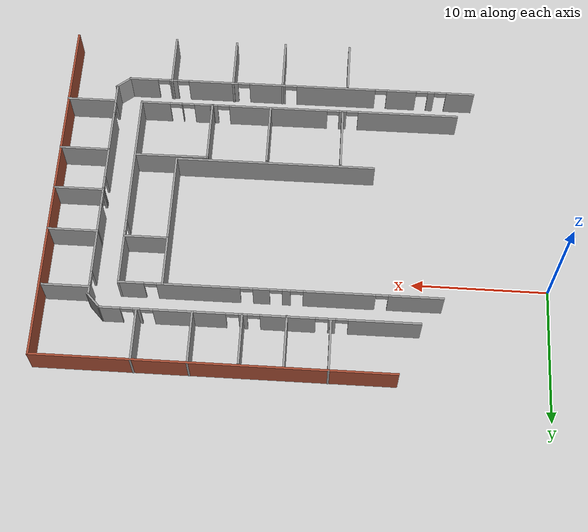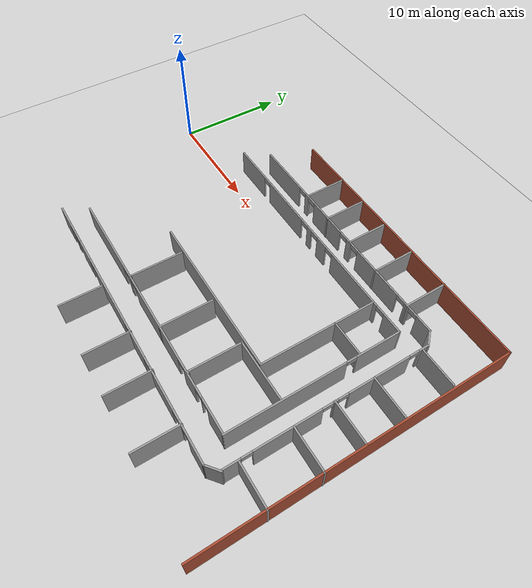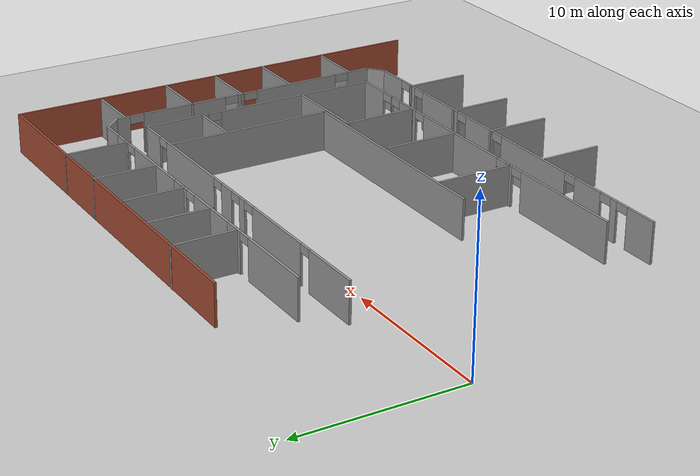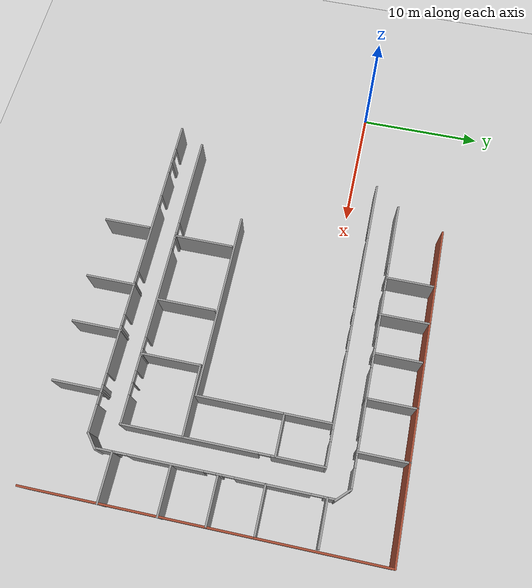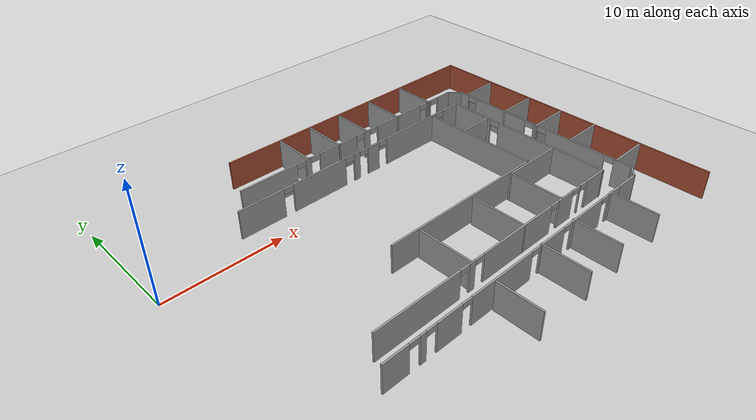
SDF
<sdf version="1.7">
 <world name="default">
  <model name="ground_plane">
   <static>1</static>
   <link name="link">
    <collision name="collision">
     <geometry><plane><normal>0 0 1</normal><size>100 100</size></plane></geometry>
     <surface>
      <contact><collide_bitmask>65535</collide_bitmask></contact>
      <friction><ode><mu>100</mu><mu2>50</mu2></ode></friction>
     </surface>
    </collision>
    <visual name="visual">
     <cast_shadows>0</cast_shadows>
     <geometry><plane><normal>0 0 1</normal><size>100 100</size></plane></geometry>
     <material>
      <script><uri>file://media/materials/scripts/gazebo.material</uri><name>Gazebo/Grey</name></script>
     </material>
    </visual>
   </link>
  </model>
  <model name="OEC_2F_B">
   <pose>0.733156 -0.285133 0 0 -0 0</pose>
   <link name="Wall_206">
    <collision name="Wall_206_Collision">
     <geometry><box><size>4 0.15 2.5</size></box></geometry>
     <pose>0 0 1.25 0 -0 0</pose>
    </collision>
    <visual name="Wall_206_Visual">
     <pose>0 0 1.25 0 -0 0</pose>
     <geometry><box><size>4 0.15 2.5</size></box></geometry>
     <material>
      <script><uri>file://media/materials/scripts/gazebo.material</uri><name>Gazebo/Grey</name></script>
      <ambient>1 1 1 1</ambient>
     </material>
     <meta><layer>0</layer></meta>
    </visual>
    <pose>15.0544 6.25314 0 0 -0 -1.5708</pose>
   </link>
   <link name="Wall_208">
    <collision name="Wall_208_Collision">
     <geometry><box><size>4 0.15 2.5</size></box></geometry>
     <pose>0 0 1.25 0 -0 0</pose>
    </collision>
    <visual name="Wall_208_Visual">
     <pose>0 0 1.25 0 -0 0</pose>
     <geometry><box><size>4 0.15 2.5</size></box></geometry>
     <material>
      <script><uri>file://media/materials/scripts/gazebo.material</uri><name>Gazebo/Grey</name></script>
      <ambient>1 1 1 1</ambient>
     </material>
     <meta><layer>0</layer></meta>
    </visual>
    <pose>18.1853 6.18278 0 0 -0 -1.5708</pose>
   </link>
   <link name="Wall_210">
    <collision name="Wall_210_Collision">
     <geometry><box><size>3.75 0.15 2.5</size></box></geometry>
     <pose>0 0 1.25 0 -0 0</pose>
    </collision>
    <visual name="Wall_210_Visual">
     <pose>0 0 1.25 0 -0 0</pose>
     <geometry><box><size>3.75 0.15 2.5</size></box></geometry>
     <material>
      <script><uri>file://media/materials/scripts/gazebo.material</uri><name>Gazebo/Grey</name></script>
      <ambient>1 1 1 1</ambient>
     </material>
     <meta><layer>0</layer></meta>
    </visual>
    <pose>21.3514 6.16707 0 0 -0 -1.5708</pose>
   </link>
   <link name="Wall_212">
    <collision name="Wall_212_Collision">
     <geometry><box><size>4 0.15 2.5</size></box></geometry>
     <pose>0 0 1.25 0 -0 0</pose>
    </collision>
    <visual name="Wall_212_Visual">
     <pose>0 0 1.25 0 -0 0</pose>
     <geometry><box><size>4 0.15 2.5</size></box></geometry>
     <material>
      <script><uri>file://media/materials/scripts/gazebo.material</uri><name>Gazebo/Grey</name></script>
      <ambient>1 1 1 1</ambient>
     </material>
     <meta><layer>0</layer></meta>
    </visual>
    <pose>24.9044 6.21796 0 0 -0 -1.5708</pose>
   </link>
   <link name="Wall_214">
    <collision name="Wall_214_Collision">
     <geometry><box><size>4 0.15 2.5</size></box></geometry>
     <pose>0 0 1.25 0 -0 0</pose>
    </collision>
    <visual name="Wall_214_Visual">
     <pose>0 0 1.25 0 -0 0</pose>
     <geometry><box><size>4 0.15 2.5</size></box></geometry>
     <material>
      <script><uri>file://media/materials/scripts/gazebo.material</uri><name>Gazebo/Grey</name></script>
      <ambient>1 1 1 1</ambient>
     </material>
     <meta><layer>0</layer></meta>
    </visual>
    <pose>28.8796 6.21796 0 0 -0 -1.5708</pose>
   </link>
   <link name="Wall_219">
    <collision name="Wall_219_Collision">
     <geometry><box><size>15 0.15 2.5</size></box></geometry>
     <pose>0 0 1.25 0 -0 0</pose>
    </collision>
    <visual name="Wall_219_Visual">
     <pose>0 0 1.25 0 -0 0</pose>
     <geometry><box><size>15 0.15 2.5</size></box></geometry>
     <material>
      <script><uri>file://media/materials/scripts/gazebo.material</uri><name>Gazebo/Grey</name></script>
      <ambient>1 1 1 1</ambient>
     </material>
     <meta><layer>0</layer></meta>
    </visual>
    <pose>19.8156 -8.09521 0 0 -0 0</pose>
   </link>
   <link name="Wall_220">
    <collision name="Wall_220_Collision">
     <geometry><box><size>10.5 0.15 2.5</size></box></geometry>
     <pose>0 0 1.25 0 -0 0</pose>
    </collision>
    <visual name="Wall_220_Visual">
     <pose>0 0 1.25 0 -0 0</pose>
     <geometry><box><size>10.5 0.15 2.5</size></box></geometry>
     <material>
      <script><uri>file://media/materials/scripts/gazebo.material</uri><name>Gazebo/Grey</name></script>
      <ambient>1 1 1 1</ambient>
     </material>
     <meta><layer>0</layer></meta>
    </visual>
    <pose>27.2406 -2.92021 0 0 -0 1.5708</pose>
   </link>
   <link name="Wall_222">
    <collision name="Wall_222_Collision">
     <geometry><box><size>3.25 0.15 2.5</size></box></geometry>
     <pose>0 0 1.25 0 -0 0</pose>
    </collision>
    <visual name="Wall_222_Visual">
     <pose>0 0 1.25 0 -0 0</pose>
     <geometry><box><size>3.25 0.15 2.5</size></box></geometry>
     <material>
      <script><uri>file://media/materials/scripts/gazebo.material</uri><name>Gazebo/Grey</name></script>
      <ambient>1 1 1 1</ambient>
     </material>
     <meta><layer>0</layer></meta>
    </visual>
    <pose>28.8075 -1.41603 0 0 -0 0</pose>
   </link>
   <link name="Wall_224">
    <collision name="Wall_224_Collision">
     <geometry><box><size>5.62083 0.15 2.5</size></box></geometry>
     <pose>0 0 1.25 0 -0 0</pose>
    </collision>
    <visual name="Wall_224_Visual">
     <pose>0 0 1.25 0 -0 0</pose>
     <geometry><box><size>5.62083 0.15 2.5</size></box></geometry>
     <material>
      <script><uri>file://media/materials/scripts/gazebo.material</uri><name>Gazebo/Grey</name></script>
      <ambient>1 1 1 1</ambient>
     </material>
     <meta><layer>0</layer></meta>
    </visual>
    <pose>27.6729 -8.31895 0 0 -0 -3.13424</pose>
   </link>
   <link name="Wall_230">
    <collision name="Wall_230_Collision">
     <geometry><box><size>3.5 0.15 2.5</size></box></geometry>
     <pose>0 0 1.25 0 -0 0</pose>
    </collision>
    <visual name="Wall_230_Visual">
     <pose>0 0 1.25 0 -0 0</pose>
     <geometry><box><size>3.5 0.15 2.5</size></box></geometry>
     <material>
      <script><uri>file://media/materials/scripts/gazebo.material</uri><name>Gazebo/Grey</name></script>
      <ambient>1 1 1 1</ambient>
     </material>
     <meta><layer>0</layer></meta>
    </visual>
    <pose>34.1634 2.77483 0 0 -0 0</pose>
   </link>
   <link name="Wall_232">
    <collision name="Wall_232_Collision">
     <geometry><box><size>3.75 0.15 2.5</size></box></geometry>
     <pose>0 0 1.25 0 -0 0</pose>
    </collision>
    <visual name="Wall_232_Visual">
     <pose>0 0 1.25 0 -0 0</pose>
     <geometry><box><size>3.75 0.15 2.5</size></box></geometry>
     <material>
      <script><uri>file://media/materials/scripts/gazebo.material</uri><name>Gazebo/Grey</name></script>
      <ambient>1 1 1 1</ambient>
     </material>
     <meta><layer>0</layer></meta>
    </visual>
    <pose>34.2272 -1.69135 0 0 -0 0</pose>
   </link>
   <link name="Wall_234">
    <collision name="Wall_234_Collision">
     <geometry><box><size>3.75 0.15 2.5</size></box></geometry>
     <pose>0 0 1.25 0 -0 0</pose>
    </collision>
    <visual name="Wall_234_Visual">
     <pose>0 0 1.25 0 -0 0</pose>
     <geometry><box><size>3.75 0.15 2.5</size></box></geometry>
     <material>
      <script><uri>file://media/materials/scripts/gazebo.material</uri><name>Gazebo/Grey</name></script>
      <ambient>1 1 1 1</ambient>
     </material>
     <meta><layer>0</layer></meta>
    </visual>
    <pose>34.2272 -5.14804 0 0 -0 0</pose>
   </link>
   <link name="Wall_238">
    <collision name="Wall_238_Collision">
     <geometry><box><size>3.75 0.15 2.5</size></box></geometry>
     <pose>0 0 1.25 0 -0 0</pose>
    </collision>
    <visual name="Wall_238_Visual">
     <pose>0 0 1.25 0 -0 0</pose>
     <geometry><box><size>3.75 0.15 2.5</size></box></geometry>
     <material>
      <script><uri>file://media/materials/scripts/gazebo.material</uri><name>Gazebo/Grey</name></script>
      <ambient>1 1 1 1</ambient>
     </material>
     <meta><layer>0</layer></meta>
    </visual>
    <pose>34.2981 -12.9791 0 0 -0 3.14159</pose>
   </link>
   <link name="Wall_240">
    <collision name="Wall_240_Collision">
     <geometry><box><size>3.75 0.15 2.5</size></box></geometry>
     <pose>0 0 1.25 0 -0 0</pose>
    </collision>
    <visual name="Wall_240_Visual">
     <pose>0 0 1.25 0 -0 0</pose>
     <geometry><box><size>3.75 0.15 2.5</size></box></geometry>
     <material>
      <script><uri>file://media/materials/scripts/gazebo.material</uri><name>Gazebo/Grey</name></script>
      <ambient>1 1 1 1</ambient>
     </material>
     <meta><layer>0</layer></meta>
    </visual>
    <pose>34.2981 -8.60474 0 0 -0 3.14159</pose>
   </link>
   <link name="Wall_242">
    <collision name="Wall_242_Collision">
     <geometry><box><size>4.75 0.15 2.5</size></box></geometry>
     <pose>0 0 1.25 0 -0 0</pose>
    </collision>
    <visual name="Wall_242_Visual">
     <pose>0 0 1.25 0 -0 0</pose>
     <geometry><box><size>4.75 0.15 2.5</size></box></geometry>
     <material>
      <script><uri>file://media/materials/scripts/gazebo.material</uri><name>Gazebo/Grey</name></script>
      <ambient>1 1 1 1</ambient>
     </material>
     <meta><layer>0</layer></meta>
    </visual>
    <pose>14.899 -10.6294 0 0 -0 -1.5708</pose>
   </link>
   <link name="Wall_243">
    <collision name="Wall_243_Collision">
     <geometry><box><size>0.16 0.15 2.5</size></box></geometry>
     <pose>0 0 1.25 0 -0 0</pose>
    </collision>
    <visual name="Wall_243_Visual">
     <pose>0 0 1.25 0 -0 0</pose>
     <geometry><box><size>0.16 0.15 2.5</size></box></geometry>
     <material>
      <script><uri>file://media/materials/scripts/gazebo.material</uri><name>Gazebo/Grey</name></script>
      <ambient>0 0 0 1</ambient>
     </material>
     <meta><layer>0</layer></meta>
    </visual>
    <pose>14.904 -12.9294 0 0 -0 0</pose>
   </link>
   <link name="Wall_244">
    <collision name="Wall_244_Collision">
     <geometry><box><size>4.75 0.15 2.5</size></box></geometry>
     <pose>0 0 1.25 0 -0 0</pose>
    </collision>
    <visual name="Wall_244_Visual">
     <pose>0 0 1.25 0 -0 0</pose>
     <geometry><box><size>4.75 0.15 2.5</size></box></geometry>
     <material>
      <script><uri>file://media/materials/scripts/gazebo.material</uri><name>Gazebo/Grey</name></script>
      <ambient>1 1 1 1</ambient>
     </material>
     <meta><layer>0</layer></meta>
    </visual>
    <pose>20.4664 -10.6906 0 0 -0 -1.5708</pose>
   </link>
   <link name="Wall_246">
    <collision name="Wall_246_Collision">
     <geometry><box><size>4.75 0.15 2.5</size></box></geometry>
     <pose>0 0 1.25 0 -0 0</pose>
    </collision>
    <visual name="Wall_246_Visual">
     <pose>0 0 1.25 0 -0 0</pose>
     <geometry><box><size>4.75 0.15 2.5</size></box></geometry>
     <material>
      <script><uri>file://media/materials/scripts/gazebo.material</uri><name>Gazebo/Grey</name></script>
      <ambient>1 1 1 1</ambient>
     </material>
     <meta><layer>0</layer></meta>
    </visual>
    <pose>24.9577 -10.6189 0 0 -0 -1.5708</pose>
   </link>
   <link name="Wall_247">
    <collision name="Wall_247_Collision">
     <geometry><box><size>0.286733 0.15 2.5</size></box></geometry>
     <pose>0 0 1.25 0 -0 0</pose>
    </collision>
    <visual name="Wall_247_Visual">
     <pose>0 0 1.25 0 -0 0</pose>
     <geometry><box><size>0.286733 0.15 2.5</size></box></geometry>
     <material>
      <script><uri>file://media/materials/scripts/gazebo.material</uri><name>Gazebo/Grey</name></script>
      <ambient>0 0 0 1</ambient>
     </material>
     <meta><layer>0</layer></meta>
    </visual>
    <pose>25.0029 -12.9189 0 0 -0 0.298621</pose>
   </link>
   <link name="Wall_248">
    <collision name="Wall_248_Collision">
     <geometry><box><size>4 0.15 2.5</size></box></geometry>
     <pose>0 0 1.25 0 -0 0</pose>
    </collision>
    <visual name="Wall_248_Visual">
     <pose>0 0 1.25 0 -0 0</pose>
     <geometry><box><size>4 0.15 2.5</size></box></geometry>
     <material>
      <script><uri>file://media/materials/scripts/gazebo.material</uri><name>Gazebo/Grey</name></script>
      <ambient>1 1 1 1</ambient>
     </material>
     <meta><layer>0</layer></meta>
    </visual>
    <pose>28.2804 -16.9631 0 0 -0 1.5708</pose>
   </link>
   <link name="Wall_256">
    <collision name="Wall_256_Collision">
     <geometry><box><size>3.75 0.15 2.5</size></box></geometry>
     <pose>0 0 1.25 0 -0 0</pose>
    </collision>
    <visual name="Wall_256_Visual">
     <pose>0 0 1.25 0 -0 0</pose>
     <geometry><box><size>3.75 0.15 2.5</size></box></geometry>
     <material>
      <script><uri>file://media/materials/scripts/gazebo.material</uri><name>Gazebo/Grey</name></script>
      <ambient>1 1 1 1</ambient>
     </material>
     <meta><layer>0</layer></meta>
    </visual>
    <pose>14.6064 -17.0881 0 0 -0 1.5708</pose>
   </link>
   <link name="Wall_258">
    <collision name="Wall_258_Collision">
     <geometry><box><size>4 0.15 2.5</size></box></geometry>
     <pose>0 0 1.25 0 -0 0</pose>
    </collision>
    <visual name="Wall_258_Visual">
     <pose>0 0 1.25 0 -0 0</pose>
     <geometry><box><size>4 0.15 2.5</size></box></geometry>
     <material>
      <script><uri>file://media/materials/scripts/gazebo.material</uri><name>Gazebo/Grey</name></script>
      <ambient>1 1 1 1</ambient>
     </material>
     <meta><layer>0</layer></meta>
    </visual>
    <pose>19.6633 -16.9631 0 0 -0 1.5708</pose>
   </link>
   <link name="Wall_260">
    <collision name="Wall_260_Collision">
     <geometry><box><size>4 0.15 2.5</size></box></geometry>
     <pose>0 0 1.25 0 -0 0</pose>
    </collision>
    <visual name="Wall_260_Visual">
     <pose>0 0 1.25 0 -0 0</pose>
     <geometry><box><size>4 0.15 2.5</size></box></geometry>
     <material>
      <script><uri>file://media/materials/scripts/gazebo.material</uri><name>Gazebo/Grey</name></script>
      <ambient>1 1 1 1</ambient>
     </material>
     <meta><layer>0</layer></meta>
    </visual>
    <pose>23.5066 -16.9227 0 0 -0 1.5708</pose>
   </link>
   <link name="Wall_57">
    <pose>20.1178 4.31124 0 0 -0 0</pose>
    <visual name="Wall_57_Visual_0">
     <pose>-8.89371 0 1.25 0 -0 0</pose>
     <geometry><box><size>5.21259 0.15 2.5</size></box></geometry>
     <material>
      <script><uri>file://media/materials/scripts/gazebo.material</uri><name>Gazebo/Grey</name></script>
      <ambient>1 1 1 1</ambient>
     </material>
     <meta><layer>0</layer></meta>
    </visual>
    <collision name="Wall_57_Collision_0">
     <geometry><box><size>5.21259 0.15 2.5</size></box></geometry>
     <pose>-8.89371 0 1.25 0 -0 0</pose>
    </collision>
    <visual name="Wall_57_Visual_1">
     <pose>-5.12565 0 1.25 0 -0 0</pose>
     <geometry><box><size>0.523511 0.15 2.5</size></box></geometry>
     <material>
      <script><uri>file://media/materials/scripts/gazebo.material</uri><name>Gazebo/Grey</name></script>
      <ambient>1 1 1 1</ambient>
     </material>
     <meta><layer>0</layer></meta>
    </visual>
    <collision name="Wall_57_Collision_1">
     <geometry><box><size>0.523511 0.15 2.5</size></box></geometry>
     <pose>-5.12565 0 1.25 0 -0 0</pose>
    </collision>
    <visual name="Wall_57_Visual_2">
     <pose>-1.99571 0 1.25 0 -0 0</pose>
     <geometry><box><size>3.93638 0.15 2.5</size></box></geometry>
     <material>
      <script><uri>file://media/materials/scripts/gazebo.material</uri><name>Gazebo/Grey</name></script>
      <ambient>1 1 1 1</ambient>
     </material>
     <meta><layer>0</layer></meta>
    </visual>
    <collision name="Wall_57_Collision_2">
     <geometry><box><size>3.93638 0.15 2.5</size></box></geometry>
     <pose>-1.99571 0 1.25 0 -0 0</pose>
    </collision>
    <visual name="Wall_57_Visual_3">
     <pose>1.18292 0 1.25 0 -0 0</pose>
     <geometry><box><size>0.620874 0.15 2.5</size></box></geometry>
     <material>
      <script><uri>file://media/materials/scripts/gazebo.material</uri><name>Gazebo/Grey</name></script>
      <ambient>1 1 1 1</ambient>
     </material>
     <meta><layer>0</layer></meta>
    </visual>
    <collision name="Wall_57_Collision_3">
     <geometry><box><size>0.620874 0.15 2.5</size></box></geometry>
     <pose>1.18292 0 1.25 0 -0 0</pose>
    </collision>
    <visual name="Wall_57_Visual_4">
     <pose>4.99271 0 1.25 0 -0 0</pose>
     <geometry><box><size>5.19871 0.15 2.5</size></box></geometry>
     <material>
      <script><uri>file://media/materials/scripts/gazebo.material</uri><name>Gazebo/Grey</name></script>
      <ambient>1 1 1 1</ambient>
     </material>
     <meta><layer>0</layer></meta>
    </visual>
    <collision name="Wall_57_Collision_4">
     <geometry><box><size>5.19871 0.15 2.5</size></box></geometry>
     <pose>4.99271 0 1.25 0 -0 0</pose>
    </collision>
    <visual name="Wall_57_Visual_5">
     <pose>8.75688 0 1.25 0 -0 0</pose>
     <geometry><box><size>0.529623 0.15 2.5</size></box></geometry>
     <material>
      <script><uri>file://media/materials/scripts/gazebo.material</uri><name>Gazebo/Grey</name></script>
      <ambient>1 1 1 1</ambient>
     </material>
     <meta><layer>0</layer></meta>
    </visual>
    <collision name="Wall_57_Collision_5">
     <geometry><box><size>0.529623 0.15 2.5</size></box></geometry>
     <pose>8.75688 0 1.25 0 -0 0</pose>
    </collision>
    <visual name="Wall_57_Visual_6">
     <pose>10.7108 0 1.25 0 -0 0</pose>
     <geometry><box><size>1.57831 0.15 2.5</size></box></geometry>
     <material>
      <script><uri>file://media/materials/scripts/gazebo.material</uri><name>Gazebo/Grey</name></script>
      <ambient>1 1 1 1</ambient>
     </material>
     <meta><layer>0</layer></meta>
    </visual>
    <collision name="Wall_57_Collision_6">
     <geometry><box><size>1.57831 0.15 2.5</size></box></geometry>
     <pose>10.7108 0 1.25 0 -0 0</pose>
    </collision>
    <visual name="Wall_57_Visual_7">
     <pose>-5.83741 0 2.25 0 -0 0</pose>
     <geometry><box><size>0.9 0.15 0.5</size></box></geometry>
     <material>
      <script><uri>file://media/materials/scripts/gazebo.material</uri><name>Gazebo/Grey</name></script>
      <ambient>1 1 1 1</ambient>
     </material>
     <meta><layer>0</layer></meta>
    </visual>
    <collision name="Wall_57_Collision_7">
     <geometry><box><size>0.9 0.15 0.5</size></box></geometry>
     <pose>-5.83741 0 2.25 0 -0 0</pose>
    </collision>
    <visual name="Wall_57_Visual_8">
     <pose>-4.4139 0 2.25 0 -0 0</pose>
     <geometry><box><size>0.9 0.15 0.5</size></box></geometry>
     <material>
      <script><uri>file://media/materials/scripts/gazebo.material</uri><name>Gazebo/Grey</name></script>
      <ambient>1 1 1 1</ambient>
     </material>
     <meta><layer>0</layer></meta>
    </visual>
    <collision name="Wall_57_Collision_8">
     <geometry><box><size>0.9 0.15 0.5</size></box></geometry>
     <pose>-4.4139 0 2.25 0 -0 0</pose>
    </collision>
    <visual name="Wall_57_Visual_9">
     <pose>0.422483 0 2.25 0 -0 0</pose>
     <geometry><box><size>0.9 0.15 0.5</size></box></geometry>
     <material>
      <script><uri>file://media/materials/scripts/gazebo.material</uri><name>Gazebo/Grey</name></script>
      <ambient>1 1 1 1</ambient>
     </material>
     <meta><layer>0</layer></meta>
    </visual>
    <collision name="Wall_57_Collision_9">
     <geometry><box><size>0.9 0.15 0.5</size></box></geometry>
     <pose>0.422483 0 2.25 0 -0 0</pose>
    </collision>
    <visual name="Wall_57_Visual_10">
     <pose>1.94336 0 2.25 0 -0 0</pose>
     <geometry><box><size>0.9 0.15 0.5</size></box></geometry>
     <material>
      <script><uri>file://media/materials/scripts/gazebo.material</uri><name>Gazebo/Grey</name></script>
      <ambient>1 1 1 1</ambient>
     </material>
     <meta><layer>0</layer></meta>
    </visual>
    <collision name="Wall_57_Collision_10">
     <geometry><box><size>0.9 0.15 0.5</size></box></geometry>
     <pose>1.94336 0 2.25 0 -0 0</pose>
    </collision>
    <visual name="Wall_57_Visual_11">
     <pose>8.04207 0 2.25 0 -0 0</pose>
     <geometry><box><size>0.9 0.15 0.5</size></box></geometry>
     <material>
      <script><uri>file://media/materials/scripts/gazebo.material</uri><name>Gazebo/Grey</name></script>
      <ambient>1 1 1 1</ambient>
     </material>
     <meta><layer>0</layer></meta>
    </visual>
    <collision name="Wall_57_Collision_11">
     <geometry><box><size>0.9 0.15 0.5</size></box></geometry>
     <pose>8.04207 0 2.25 0 -0 0</pose>
    </collision>
    <visual name="Wall_57_Visual_12">
     <pose>9.47169 0 2.25 0 -0 0</pose>
     <geometry><box><size>0.9 0.15 0.5</size></box></geometry>
     <material>
      <script><uri>file://media/materials/scripts/gazebo.material</uri><name>Gazebo/Grey</name></script>
      <ambient>1 1 1 1</ambient>
     </material>
     <meta><layer>0</layer></meta>
    </visual>
    <collision name="Wall_57_Collision_12">
     <geometry><box><size>0.9 0.15 0.5</size></box></geometry>
     <pose>9.47169 0 2.25 0 -0 0</pose>
    </collision>
   </link>
   <link name="Wall_59">
    <collision name="Wall_59_Collision">
     <geometry><box><size>1.5218 0.15 2.5</size></box></geometry>
     <pose>0 0 1.25 0 -0 0</pose>
    </collision>
    <visual name="Wall_59_Visual">
     <pose>0 0 1.25 0 -0 0</pose>
     <geometry><box><size>1.5218 0.15 2.5</size></box></geometry>
     <material>
      <script><uri>file://media/materials/scripts/gazebo.material</uri><name>Gazebo/Grey</name></script>
      <ambient>1 1 1 1</ambient>
     </material>
     <meta><layer>0</layer></meta>
    </visual>
    <pose>32.0201 3.81864 0 0 -0 -0.801167</pose>
   </link>
   <link name="Wall_60">
    <pose>32.4363 -5.44336 0 0 -0 -1.5708</pose>
    <visual name="Wall_60_Visual_0">
     <pose>-8.40451 0 1.25 0 -0 0</pose>
     <geometry><box><size>0.94098 0.15 2.5</size></box></geometry>
     <material>
      <script><uri>file://media/materials/scripts/gazebo.material</uri><name>Gazebo/Grey</name></script>
      <ambient>1 1 1 1</ambient>
     </material>
     <meta><layer>0</layer></meta>
    </visual>
    <collision name="Wall_60_Collision_0">
     <geometry><box><size>0.94098 0.15 2.5</size></box></geometry>
     <pose>-8.40451 0 1.25 0 -0 0</pose>
    </collision>
    <visual name="Wall_60_Visual_1">
     <pose>-4.25675 0 1.25 0 -0 0</pose>
     <geometry><box><size>5.55454 0.15 2.5</size></box></geometry>
     <material>
      <script><uri>file://media/materials/scripts/gazebo.material</uri><name>Gazebo/Grey</name></script>
      <ambient>1 1 1 1</ambient>
     </material>
     <meta><layer>0</layer></meta>
    </visual>
    <collision name="Wall_60_Collision_1">
     <geometry><box><size>5.55454 0.15 2.5</size></box></geometry>
     <pose>-4.25675 0 1.25 0 -0 0</pose>
    </collision>
    <visual name="Wall_60_Visual_2">
     <pose>-0.356497 0 1.25 0 -0 0</pose>
     <geometry><box><size>0.44597 0.15 2.5</size></box></geometry>
     <material>
      <script><uri>file://media/materials/scripts/gazebo.material</uri><name>Gazebo/Grey</name></script>
      <ambient>1 1 1 1</ambient>
     </material>
     <meta><layer>0</layer></meta>
    </visual>
    <collision name="Wall_60_Collision_2">
     <geometry><box><size>0.44597 0.15 2.5</size></box></geometry>
     <pose>-0.356497 0 1.25 0 -0 0</pose>
    </collision>
    <visual name="Wall_60_Visual_3">
     <pose>3.60494 0 1.25 0 -0 0</pose>
     <geometry><box><size>5.6769 0.15 2.5</size></box></geometry>
     <material>
      <script><uri>file://media/materials/scripts/gazebo.material</uri><name>Gazebo/Grey</name></script>
      <ambient>1 1 1 1</ambient>
     </material>
     <meta><layer>0</layer></meta>
    </visual>
    <collision name="Wall_60_Collision_3">
     <geometry><box><size>5.6769 0.15 2.5</size></box></geometry>
     <pose>3.60494 0 1.25 0 -0 0</pose>
    </collision>
    <visual name="Wall_60_Visual_4">
     <pose>8.10919 0 1.25 0 -0 0</pose>
     <geometry><box><size>1.53161 0.15 2.5</size></box></geometry>
     <material>
      <script><uri>file://media/materials/scripts/gazebo.material</uri><name>Gazebo/Grey</name></script>
      <ambient>1 1 1 1</ambient>
     </material>
     <meta><layer>0</layer></meta>
    </visual>
    <collision name="Wall_60_Collision_4">
     <geometry><box><size>1.53161 0.15 2.5</size></box></geometry>
     <pose>8.10919 0 1.25 0 -0 0</pose>
    </collision>
    <visual name="Wall_60_Visual_5">
     <pose>-7.48402 0 2.25 0 -0 0</pose>
     <geometry><box><size>0.9 0.15 0.5</size></box></geometry>
     <material>
      <script><uri>file://media/materials/scripts/gazebo.material</uri><name>Gazebo/Grey</name></script>
      <ambient>1 1 1 1</ambient>
     </material>
     <meta><layer>0</layer></meta>
    </visual>
    <collision name="Wall_60_Collision_5">
     <geometry><box><size>0.9 0.15 0.5</size></box></geometry>
     <pose>-7.48402 0 2.25 0 -0 0</pose>
    </collision>
    <visual name="Wall_60_Visual_6">
     <pose>-1.02948 0 2.25 0 -0 0</pose>
     <geometry><box><size>0.9 0.15 0.5</size></box></geometry>
     <material>
      <script><uri>file://media/materials/scripts/gazebo.material</uri><name>Gazebo/Grey</name></script>
      <ambient>1 1 1 1</ambient>
     </material>
     <meta><layer>0</layer></meta>
    </visual>
    <collision name="Wall_60_Collision_6">
     <geometry><box><size>0.9 0.15 0.5</size></box></geometry>
     <pose>-1.02948 0 2.25 0 -0 0</pose>
    </collision>
    <visual name="Wall_60_Visual_7">
     <pose>0.316488 0 2.25 0 -0 0</pose>
     <geometry><box><size>0.9 0.15 0.5</size></box></geometry>
     <material>
      <script><uri>file://media/materials/scripts/gazebo.material</uri><name>Gazebo/Grey</name></script>
      <ambient>1 1 1 1</ambient>
     </material>
     <meta><layer>0</layer></meta>
    </visual>
    <collision name="Wall_60_Collision_7">
     <geometry><box><size>0.9 0.15 0.5</size></box></geometry>
     <pose>0.316488 0 2.25 0 -0 0</pose>
    </collision>
    <visual name="Wall_60_Visual_8">
     <pose>6.89339 0 2.25 0 -0 0</pose>
     <geometry><box><size>0.9 0.15 0.5</size></box></geometry>
     <material>
      <script><uri>file://media/materials/scripts/gazebo.material</uri><name>Gazebo/Grey</name></script>
      <ambient>1 1 1 1</ambient>
     </material>
     <meta><layer>0</layer></meta>
    </visual>
    <collision name="Wall_60_Collision_8">
     <geometry><box><size>0.9 0.15 0.5</size></box></geometry>
     <pose>6.89339 0 2.25 0 -0 0</pose>
    </collision>
   </link>
   <link name="Wall_62">
    <collision name="Wall_62_Collision">
     <geometry><box><size>1.42013 0.15 2.5</size></box></geometry>
     <pose>0 0 1.25 0 -0 0</pose>
    </collision>
    <visual name="Wall_62_Visual">
     <pose>0 0 1.25 0 -0 0</pose>
     <geometry><box><size>1.42013 0.15 2.5</size></box></geometry>
     <material>
      <script><uri>file://media/materials/scripts/gazebo.material</uri><name>Gazebo/Grey</name></script>
      <ambient>1 1 1 1</ambient>
     </material>
     <meta><layer>0</layer></meta>
    </visual>
    <pose>32.0048 -14.6748 0 0 -0 -2.45856</pose>
   </link>
   <link name="Wall_63">
    <pose>18.2123 -15.0756 0 0 -0 3.14159</pose>
    <visual name="Wall_63_Visual_0">
     <pose>-12.2696 0 1.25 0 -0 0</pose>
     <geometry><box><size>2.21087 0.15 2.5</size></box></geometry>
     <material>
      <script><uri>file://media/materials/scripts/gazebo.material</uri><name>Gazebo/Grey</name></script>
      <ambient>1 1 1 1</ambient>
     </material>
     <meta><layer>0</layer></meta>
    </visual>
    <collision name="Wall_63_Collision_0">
     <geometry><box><size>2.21087 0.15 2.5</size></box></geometry>
     <pose>-12.2696 0 1.25 0 -0 0</pose>
    </collision>
    <visual name="Wall_63_Visual_1">
     <pose>-9.96239 0 1.25 0 -0 0</pose>
     <geometry><box><size>0.603489 0.15 2.5</size></box></geometry>
     <material>
      <script><uri>file://media/materials/scripts/gazebo.material</uri><name>Gazebo/Grey</name></script>
      <ambient>1 1 1 1</ambient>
     </material>
     <meta><layer>0</layer></meta>
    </visual>
    <collision name="Wall_63_Collision_1">
     <geometry><box><size>0.603489 0.15 2.5</size></box></geometry>
     <pose>-9.96239 0 1.25 0 -0 0</pose>
    </collision>
    <visual name="Wall_63_Visual_2">
     <pose>-6.83976 0 1.25 0 -0 0</pose>
     <geometry><box><size>3.84178 0.15 2.5</size></box></geometry>
     <material>
      <script><uri>file://media/materials/scripts/gazebo.material</uri><name>Gazebo/Grey</name></script>
      <ambient>1 1 1 1</ambient>
     </material>
     <meta><layer>0</layer></meta>
    </visual>
    <collision name="Wall_63_Collision_2">
     <geometry><box><size>3.84178 0.15 2.5</size></box></geometry>
     <pose>-6.83976 0 1.25 0 -0 0</pose>
    </collision>
    <visual name="Wall_63_Visual_3">
     <pose>-2.62999 0 1.25 0 -0 0</pose>
     <geometry><box><size>2.77777 0.15 2.5</size></box></geometry>
     <material>
      <script><uri>file://media/materials/scripts/gazebo.material</uri><name>Gazebo/Grey</name></script>
      <ambient>1 1 1 1</ambient>
     </material>
     <meta><layer>0</layer></meta>
    </visual>
    <collision name="Wall_63_Collision_3">
     <geometry><box><size>2.77777 0.15 2.5</size></box></geometry>
     <pose>-2.62999 0 1.25 0 -0 0</pose>
    </collision>
    <visual name="Wall_63_Visual_4">
     <pose>2.70162 0 1.25 0 -0 0</pose>
     <geometry><box><size>6.08544 0.15 2.5</size></box></geometry>
     <material>
      <script><uri>file://media/materials/scripts/gazebo.material</uri><name>Gazebo/Grey</name></script>
      <ambient>1 1 1 1</ambient>
     </material>
     <meta><layer>0</layer></meta>
    </visual>
    <collision name="Wall_63_Collision_4">
     <geometry><box><size>6.08544 0.15 2.5</size></box></geometry>
     <pose>2.70162 0 1.25 0 -0 0</pose>
    </collision>
    <visual name="Wall_63_Visual_5">
     <pose>7.77879 0 1.25 0 -0 0</pose>
     <geometry><box><size>2.26889 0.15 2.5</size></box></geometry>
     <material>
      <script><uri>file://media/materials/scripts/gazebo.material</uri><name>Gazebo/Grey</name></script>
      <ambient>1 1 1 1</ambient>
     </material>
     <meta><layer>0</layer></meta>
    </visual>
    <collision name="Wall_63_Collision_5">
     <geometry><box><size>2.26889 0.15 2.5</size></box></geometry>
     <pose>7.77879 0 1.25 0 -0 0</pose>
    </collision>
    <visual name="Wall_63_Visual_6">
     <pose>10.0687 0 1.25 0 -0 0</pose>
     <geometry><box><size>0.510967 0.15 2.5</size></box></geometry>
     <material>
      <script><uri>file://media/materials/scripts/gazebo.material</uri><name>Gazebo/Grey</name></script>
      <ambient>1 1 1 1</ambient>
     </material>
     <meta><layer>0</layer></meta>
    </visual>
    <collision name="Wall_63_Collision_6">
     <geometry><box><size>0.510967 0.15 2.5</size></box></geometry>
     <pose>10.0687 0 1.25 0 -0 0</pose>
    </collision>
    <visual name="Wall_63_Visual_7">
     <pose>12.2996 0 1.25 0 -0 0</pose>
     <geometry><box><size>2.1508 0.15 2.5</size></box></geometry>
     <material>
      <script><uri>file://media/materials/scripts/gazebo.material</uri><name>Gazebo/Grey</name></script>
      <ambient>1 1 1 1</ambient>
     </material>
     <meta><layer>0</layer></meta>
    </visual>
    <collision name="Wall_63_Collision_7">
     <geometry><box><size>2.1508 0.15 2.5</size></box></geometry>
     <pose>12.2996 0 1.25 0 -0 0</pose>
    </collision>
    <visual name="Wall_63_Visual_8">
     <pose>-10.7141 0 2.25 0 -0 0</pose>
     <geometry><box><size>0.9 0.15 0.5</size></box></geometry>
     <material>
      <script><uri>file://media/materials/scripts/gazebo.material</uri><name>Gazebo/Grey</name></script>
      <ambient>1 1 1 1</ambient>
     </material>
     <meta><layer>0</layer></meta>
    </visual>
    <collision name="Wall_63_Collision_8">
     <geometry><box><size>0.9 0.15 0.5</size></box></geometry>
     <pose>-10.7141 0 2.25 0 -0 0</pose>
    </collision>
    <visual name="Wall_63_Visual_9">
     <pose>-9.21064 0 2.25 0 -0 0</pose>
     <geometry><box><size>0.9 0.15 0.5</size></box></geometry>
     <material>
      <script><uri>file://media/materials/scripts/gazebo.material</uri><name>Gazebo/Grey</name></script>
      <ambient>1 1 1 1</ambient>
     </material>
     <meta><layer>0</layer></meta>
    </visual>
    <collision name="Wall_63_Collision_9">
     <geometry><box><size>0.9 0.15 0.5</size></box></geometry>
     <pose>-9.21064 0 2.25 0 -0 0</pose>
    </collision>
    <visual name="Wall_63_Visual_10">
     <pose>-4.46887 0 2.25 0 -0 0</pose>
     <geometry><box><size>0.9 0.15 0.5</size></box></geometry>
     <material>
      <script><uri>file://media/materials/scripts/gazebo.material</uri><name>Gazebo/Grey</name></script>
      <ambient>1 1 1 1</ambient>
     </material>
     <meta><layer>0</layer></meta>
    </visual>
    <collision name="Wall_63_Collision_10">
     <geometry><box><size>0.9 0.15 0.5</size></box></geometry>
     <pose>-4.46887 0 2.25 0 -0 0</pose>
    </collision>
    <visual name="Wall_63_Visual_11">
     <pose>-0.791101 0 2.25 0 -0 0</pose>
     <geometry><box><size>0.9 0.15 0.5</size></box></geometry>
     <material>
      <script><uri>file://media/materials/scripts/gazebo.material</uri><name>Gazebo/Grey</name></script>
      <ambient>1 1 1 1</ambient>
     </material>
     <meta><layer>0</layer></meta>
    </visual>
    <collision name="Wall_63_Collision_11">
     <geometry><box><size>0.9 0.15 0.5</size></box></geometry>
     <pose>-0.791101 0 2.25 0 -0 0</pose>
    </collision>
    <visual name="Wall_63_Visual_12">
     <pose>6.19434 0 2.25 0 -0 0</pose>
     <geometry><box><size>0.9 0.15 0.5</size></box></geometry>
     <material>
      <script><uri>file://media/materials/scripts/gazebo.material</uri><name>Gazebo/Grey</name></script>
      <ambient>1 1 1 1</ambient>
     </material>
     <meta><layer>0</layer></meta>
    </visual>
    <collision name="Wall_63_Collision_12">
     <geometry><box><size>0.9 0.15 0.5</size></box></geometry>
     <pose>6.19434 0 2.25 0 -0 0</pose>
    </collision>
    <visual name="Wall_63_Visual_13">
     <pose>9.36323 0 2.25 0 -0 0</pose>
     <geometry><box><size>0.9 0.15 0.5</size></box></geometry>
     <material>
      <script><uri>file://media/materials/scripts/gazebo.material</uri><name>Gazebo/Grey</name></script>
      <ambient>1 1 1 1</ambient>
     </material>
     <meta><layer>0</layer></meta>
    </visual>
    <collision name="Wall_63_Collision_13">
     <geometry><box><size>0.9 0.15 0.5</size></box></geometry>
     <pose>9.36323 0 2.25 0 -0 0</pose>
    </collision>
    <visual name="Wall_63_Visual_14">
     <pose>10.7742 0 2.25 0 -0 0</pose>
     <geometry><box><size>0.9 0.15 0.5</size></box></geometry>
     <material>
      <script><uri>file://media/materials/scripts/gazebo.material</uri><name>Gazebo/Grey</name></script>
      <ambient>1 1 1 1</ambient>
     </material>
     <meta><layer>0</layer></meta>
    </visual>
    <collision name="Wall_63_Collision_14">
     <geometry><box><size>0.9 0.15 0.5</size></box></geometry>
     <pose>10.7742 0 2.25 0 -0 0</pose>
    </collision>
   </link>
   <link name="Wall_67">
    <pose>18.2892 -12.9826 0 0 -0 0.001451</pose>
    <visual name="Wall_67_Visual_0">
     <pose>-8.37722 0 1.25 0 -0 0</pose>
     <geometry><box><size>7.6363 0.15 2.5</size></box></geometry>
     <material>
      <script><uri>file://media/materials/scripts/gazebo.material</uri><name>Gazebo/Grey</name></script>
      <ambient>1 1 1 1</ambient>
     </material>
     <meta><layer>0</layer></meta>
    </visual>
    <collision name="Wall_67_Collision_0">
     <geometry><box><size>7.6363 0.15 2.5</size></box></geometry>
     <pose>-8.37722 0 1.25 0 -0 0</pose>
    </collision>
    <visual name="Wall_67_Visual_1">
     <pose>-3.37753 0 1.25 0 -0 0</pose>
     <geometry><box><size>0.563086 0.15 2.5</size></box></geometry>
     <material>
      <script><uri>file://media/materials/scripts/gazebo.material</uri><name>Gazebo/Grey</name></script>
      <ambient>1 1 1 1</ambient>
     </material>
     <meta><layer>0</layer></meta>
    </visual>
    <collision name="Wall_67_Collision_1">
     <geometry><box><size>0.563086 0.15 2.5</size></box></geometry>
     <pose>-3.37753 0 1.25 0 -0 0</pose>
    </collision>
    <visual name="Wall_67_Visual_2">
     <pose>1.58336 0 1.25 0 -0 0</pose>
     <geometry><box><size>7.5587 0.15 2.5</size></box></geometry>
     <material>
      <script><uri>file://media/materials/scripts/gazebo.material</uri><name>Gazebo/Grey</name></script>
      <ambient>1 1 1 1</ambient>
     </material>
     <meta><layer>0</layer></meta>
    </visual>
    <collision name="Wall_67_Collision_2">
     <geometry><box><size>7.5587 0.15 2.5</size></box></geometry>
     <pose>1.58336 0 1.25 0 -0 0</pose>
    </collision>
    <visual name="Wall_67_Visual_3">
     <pose>7.16095 0 1.25 0 -0 0</pose>
     <geometry><box><size>1.79648 0.15 2.5</size></box></geometry>
     <material>
      <script><uri>file://media/materials/scripts/gazebo.material</uri><name>Gazebo/Grey</name></script>
      <ambient>1 1 1 1</ambient>
     </material>
     <meta><layer>0</layer></meta>
    </visual>
    <collision name="Wall_67_Collision_3">
     <geometry><box><size>1.79648 0.15 2.5</size></box></geometry>
     <pose>7.16095 0 1.25 0 -0 0</pose>
    </collision>
    <visual name="Wall_67_Visual_4">
     <pose>8.99493 0 1.25 0 -0 0</pose>
     <geometry><box><size>0.071484 0.15 2.5</size></box></geometry>
     <material>
      <script><uri>file://media/materials/scripts/gazebo.material</uri><name>Gazebo/Grey</name></script>
      <ambient>1 1 1 1</ambient>
     </material>
     <meta><layer>0</layer></meta>
    </visual>
    <collision name="Wall_67_Collision_4">
     <geometry><box><size>0.071484 0.15 2.5</size></box></geometry>
     <pose>8.99493 0 1.25 0 -0 0</pose>
    </collision>
    <visual name="Wall_67_Visual_5">
     <pose>11.063 0 1.25 0 -0 0</pose>
     <geometry><box><size>2.2647 0.15 2.5</size></box></geometry>
     <material>
      <script><uri>file://media/materials/scripts/gazebo.material</uri><name>Gazebo/Grey</name></script>
      <ambient>1 1 1 1</ambient>
     </material>
     <meta><layer>0</layer></meta>
    </visual>
    <collision name="Wall_67_Collision_5">
     <geometry><box><size>2.2647 0.15 2.5</size></box></geometry>
     <pose>11.063 0 1.25 0 -0 0</pose>
    </collision>
    <visual name="Wall_67_Visual_6">
     <pose>-4.10907 0 2.25 0 -0 0</pose>
     <geometry><box><size>0.9 0.15 0.5</size></box></geometry>
     <material>
      <script><uri>file://media/materials/scripts/gazebo.material</uri><name>Gazebo/Grey</name></script>
      <ambient>1 1 1 1</ambient>
     </material>
     <meta><layer>0</layer></meta>
    </visual>
    <collision name="Wall_67_Collision_6">
     <geometry><box><size>0.9 0.15 0.5</size></box></geometry>
     <pose>-4.10907 0 2.25 0 -0 0</pose>
    </collision>
    <visual name="Wall_67_Visual_7">
     <pose>-2.64599 0 2.25 0 -0 0</pose>
     <geometry><box><size>0.9 0.15 0.5</size></box></geometry>
     <material>
      <script><uri>file://media/materials/scripts/gazebo.material</uri><name>Gazebo/Grey</name></script>
      <ambient>1 1 1 1</ambient>
     </material>
     <meta><layer>0</layer></meta>
    </visual>
    <collision name="Wall_67_Collision_7">
     <geometry><box><size>0.9 0.15 0.5</size></box></geometry>
     <pose>-2.64599 0 2.25 0 -0 0</pose>
    </collision>
    <visual name="Wall_67_Visual_8">
     <pose>5.81271 0 2.25 0 -0 0</pose>
     <geometry><box><size>0.9 0.15 0.5</size></box></geometry>
     <material>
      <script><uri>file://media/materials/scripts/gazebo.material</uri><name>Gazebo/Grey</name></script>
      <ambient>1 1 1 1</ambient>
     </material>
     <meta><layer>0</layer></meta>
    </visual>
    <collision name="Wall_67_Collision_8">
     <geometry><box><size>0.9 0.15 0.5</size></box></geometry>
     <pose>5.81271 0 2.25 0 -0 0</pose>
    </collision>
    <visual name="Wall_67_Visual_9">
     <pose>8.50919 0 2.25 0 -0 0</pose>
     <geometry><box><size>0.9 0.15 0.5</size></box></geometry>
     <material>
      <script><uri>file://media/materials/scripts/gazebo.material</uri><name>Gazebo/Grey</name></script>
      <ambient>1 1 1 1</ambient>
     </material>
     <meta><layer>0</layer></meta>
    </visual>
    <collision name="Wall_67_Collision_9">
     <geometry><box><size>0.9 0.15 0.5</size></box></geometry>
     <pose>8.50919 0 2.25 0 -0 0</pose>
    </collision>
    <visual name="Wall_67_Visual_10">
     <pose>9.48067 0 2.25 0 -0 0</pose>
     <geometry><box><size>0.9 0.15 0.5</size></box></geometry>
     <material>
      <script><uri>file://media/materials/scripts/gazebo.material</uri><name>Gazebo/Grey</name></script>
      <ambient>1 1 1 1</ambient>
     </material>
     <meta><layer>0</layer></meta>
    </visual>
    <collision name="Wall_67_Collision_10">
     <geometry><box><size>0.9 0.15 0.5</size></box></geometry>
     <pose>9.48067 0 2.25 0 -0 0</pose>
    </collision>
   </link>
   <link name="Wall_68">
    <pose>30.4096 -5.36033 0 0 -0 1.5708</pose>
    <visual name="Wall_68_Visual_0">
     <pose>-2.50794 0 1.25 0 -0 0</pose>
     <geometry><box><size>10.4138 0.15 2.5</size></box></geometry>
     <material>
      <script><uri>file://media/materials/scripts/gazebo.material</uri><name>Gazebo/Grey</name></script>
      <ambient>1 1 1 1</ambient>
     </material>
     <meta><layer>0</layer></meta>
    </visual>
    <collision name="Wall_68_Collision_0">
     <geometry><box><size>10.4138 0.15 2.5</size></box></geometry>
     <pose>-2.50794 0 1.25 0 -0 0</pose>
    </collision>
    <visual name="Wall_68_Visual_1">
     <pose>5.65689 0 1.25 0 -0 0</pose>
     <geometry><box><size>4.11587 0.15 2.5</size></box></geometry>
     <material>
      <script><uri>file://media/materials/scripts/gazebo.material</uri><name>Gazebo/Grey</name></script>
      <ambient>1 1 1 1</ambient>
     </material>
     <meta><layer>0</layer></meta>
    </visual>
    <collision name="Wall_68_Collision_1">
     <geometry><box><size>4.11587 0.15 2.5</size></box></geometry>
     <pose>5.65689 0 1.25 0 -0 0</pose>
    </collision>
    <visual name="Wall_68_Visual_2">
     <pose>3.14895 0 2.25 0 -0 0</pose>
     <geometry><box><size>0.9 0.15 0.5</size></box></geometry>
     <material>
      <script><uri>file://media/materials/scripts/gazebo.material</uri><name>Gazebo/Grey</name></script>
      <ambient>1 1 1 1</ambient>
     </material>
     <meta><layer>0</layer></meta>
    </visual>
    <collision name="Wall_68_Collision_2">
     <geometry><box><size>0.9 0.15 0.5</size></box></geometry>
     <pose>3.14895 0 2.25 0 -0 0</pose>
    </collision>
   </link>
   <link name="Wall_69">
    <pose>18.7716 2.27949 0 0 -0 3.14159</pose>
    <visual name="Wall_69_Visual_0">
     <pose>-10.7527 0 1.25 0 -0 0</pose>
     <geometry><box><size>1.92057 0.15 2.5</size></box></geometry>
     <material>
      <script><uri>file://media/materials/scripts/gazebo.material</uri><name>Gazebo/Grey</name></script>
      <ambient>1 1 1 1</ambient>
     </material>
     <meta><layer>0</layer></meta>
    </visual>
    <collision name="Wall_69_Collision_0">
     <geometry><box><size>1.92057 0.15 2.5</size></box></geometry>
     <pose>-10.7527 0 1.25 0 -0 0</pose>
    </collision>
    <visual name="Wall_69_Visual_1">
     <pose>-5.88568 0 1.25 0 -0 0</pose>
     <geometry><box><size>6.01339 0.15 2.5</size></box></geometry>
     <material>
      <script><uri>file://media/materials/scripts/gazebo.material</uri><name>Gazebo/Grey</name></script>
      <ambient>1 1 1 1</ambient>
     </material>
     <meta><layer>0</layer></meta>
    </visual>
    <collision name="Wall_69_Collision_1">
     <geometry><box><size>6.01339 0.15 2.5</size></box></geometry>
     <pose>-5.88568 0 1.25 0 -0 0</pose>
    </collision>
    <visual name="Wall_69_Visual_2">
     <pose>-1.37362 0 1.25 0 -0 0</pose>
     <geometry><box><size>1.21073 0.15 2.5</size></box></geometry>
     <material>
      <script><uri>file://media/materials/scripts/gazebo.material</uri><name>Gazebo/Grey</name></script>
      <ambient>1 1 1 1</ambient>
     </material>
     <meta><layer>0</layer></meta>
    </visual>
    <collision name="Wall_69_Collision_2">
     <geometry><box><size>1.21073 0.15 2.5</size></box></geometry>
     <pose>-1.37362 0 1.25 0 -0 0</pose>
    </collision>
    <visual name="Wall_69_Visual_3">
     <pose>0.4312 0 1.25 0 -0 0</pose>
     <geometry><box><size>0.59892 0.15 2.5</size></box></geometry>
     <material>
      <script><uri>file://media/materials/scripts/gazebo.material</uri><name>Gazebo/Grey</name></script>
      <ambient>1 1 1 1</ambient>
     </material>
     <meta><layer>0</layer></meta>
    </visual>
    <collision name="Wall_69_Collision_3">
     <geometry><box><size>0.59892 0.15 2.5</size></box></geometry>
     <pose>0.4312 0 1.25 0 -0 0</pose>
    </collision>
    <visual name="Wall_69_Visual_4">
     <pose>4.2272 0 1.25 0 -0 0</pose>
     <geometry><box><size>5.19309 0.15 2.5</size></box></geometry>
     <material>
      <script><uri>file://media/materials/scripts/gazebo.material</uri><name>Gazebo/Grey</name></script>
      <ambient>1 1 1 1</ambient>
     </material>
     <meta><layer>0</layer></meta>
    </visual>
    <collision name="Wall_69_Collision_4">
     <geometry><box><size>5.19309 0.15 2.5</size></box></geometry>
     <pose>4.2272 0 1.25 0 -0 0</pose>
    </collision>
    <visual name="Wall_69_Visual_5">
     <pose>9.71835 0 1.25 0 -0 0</pose>
     <geometry><box><size>3.9892 0.15 2.5</size></box></geometry>
     <material>
      <script><uri>file://media/materials/scripts/gazebo.material</uri><name>Gazebo/Grey</name></script>
      <ambient>1 1 1 1</ambient>
     </material>
     <meta><layer>0</layer></meta>
    </visual>
    <collision name="Wall_69_Collision_5">
     <geometry><box><size>3.9892 0.15 2.5</size></box></geometry>
     <pose>9.71835 0 1.25 0 -0 0</pose>
    </collision>
    <visual name="Wall_69_Visual_6">
     <pose>-9.34238 0 2.25 0 -0 0</pose>
     <geometry><box><size>0.9 0.15 0.5</size></box></geometry>
     <material>
      <script><uri>file://media/materials/scripts/gazebo.material</uri><name>Gazebo/Grey</name></script>
      <ambient>1 1 1 1</ambient>
     </material>
     <meta><layer>0</layer></meta>
    </visual>
    <collision name="Wall_69_Collision_6">
     <geometry><box><size>0.9 0.15 0.5</size></box></geometry>
     <pose>-9.34238 0 2.25 0 -0 0</pose>
    </collision>
    <visual name="Wall_69_Visual_7">
     <pose>-2.42899 0 2.25 0 -0 0</pose>
     <geometry><box><size>0.9 0.15 0.5</size></box></geometry>
     <material>
      <script><uri>file://media/materials/scripts/gazebo.material</uri><name>Gazebo/Grey</name></script>
      <ambient>1 1 1 1</ambient>
     </material>
     <meta><layer>0</layer></meta>
    </visual>
    <collision name="Wall_69_Collision_7">
     <geometry><box><size>0.9 0.15 0.5</size></box></geometry>
     <pose>-2.42899 0 2.25 0 -0 0</pose>
    </collision>
    <visual name="Wall_69_Visual_8">
     <pose>-0.31826 0 2.25 0 -0 0</pose>
     <geometry><box><size>0.9 0.15 0.5</size></box></geometry>
     <material>
      <script><uri>file://media/materials/scripts/gazebo.material</uri><name>Gazebo/Grey</name></script>
      <ambient>1 1 1 1</ambient>
     </material>
     <meta><layer>0</layer></meta>
    </visual>
    <collision name="Wall_69_Collision_8">
     <geometry><box><size>0.9 0.15 0.5</size></box></geometry>
     <pose>-0.31826 0 2.25 0 -0 0</pose>
    </collision>
    <visual name="Wall_69_Visual_9">
     <pose>1.18066 0 2.25 0 -0 0</pose>
     <geometry><box><size>0.9 0.15 0.5</size></box></geometry>
     <material>
      <script><uri>file://media/materials/scripts/gazebo.material</uri><name>Gazebo/Grey</name></script>
      <ambient>1 1 1 1</ambient>
     </material>
     <meta><layer>0</layer></meta>
    </visual>
    <collision name="Wall_69_Collision_9">
     <geometry><box><size>0.9 0.15 0.5</size></box></geometry>
     <pose>1.18066 0 2.25 0 -0 0</pose>
    </collision>
    <visual name="Wall_69_Visual_10">
     <pose>7.27375 0 2.25 0 -0 0</pose>
     <geometry><box><size>0.9 0.15 0.5</size></box></geometry>
     <material>
      <script><uri>file://media/materials/scripts/gazebo.material</uri><name>Gazebo/Grey</name></script>
      <ambient>1 1 1 1</ambient>
     </material>
     <meta><layer>0</layer></meta>
    </visual>
    <collision name="Wall_69_Collision_10">
     <geometry><box><size>0.9 0.15 0.5</size></box></geometry>
     <pose>7.27375 0 2.25 0 -0 0</pose>
    </collision>
   </link>
   <link name="Wall_77">
    <collision name="Wall_77_Collision">
     <geometry><box><size>26 0.15 2.5</size></box></geometry>
     <pose>0 0 1.25 0 -0 0</pose>
    </collision>
    <visual name="Wall_77_Visual">
     <pose>0 0 1.25 0 -0 0</pose>
     <geometry><box><size>26 0.15 2.5</size></box></geometry>
     <material>
      <script><uri>file://media/materials/scripts/gazebo.material</uri><name>Gazebo/Bricks</name></script>
      <ambient>1 1 1 1</ambient>
     </material>
     <meta><layer>0</layer></meta>
    </visual>
    <pose>23.1512 8.14208 0 0 -0 -0.00238</pose>
   </link>
   <link name="Wall_78">
    <collision name="Wall_78_Collision">
     <geometry><box><size>27.131 0.15 2.5</size></box></geometry>
     <pose>0 0 1.25 0 -0 0</pose>
    </collision>
    <visual name="Wall_78_Visual">
     <pose>0 0 1.25 0 -0 0</pose>
     <geometry><box><size>27.131 0.15 2.5</size></box></geometry>
     <material>
      <script><uri>file://media/materials/scripts/gazebo.material</uri><name>Gazebo/Bricks</name></script>
      <ambient>1 1 1 1</ambient>
     </material>
     <meta><layer>0</layer></meta>
    </visual>
    <pose>36.0762 -5.3924 0 0 -0 -1.5708</pose>
   </link>
   <static>1</static>
  </model>
 </world>
</sdf>
